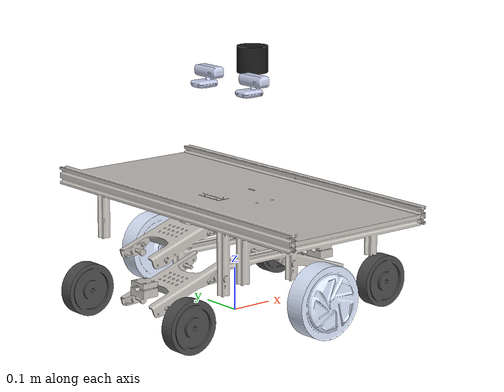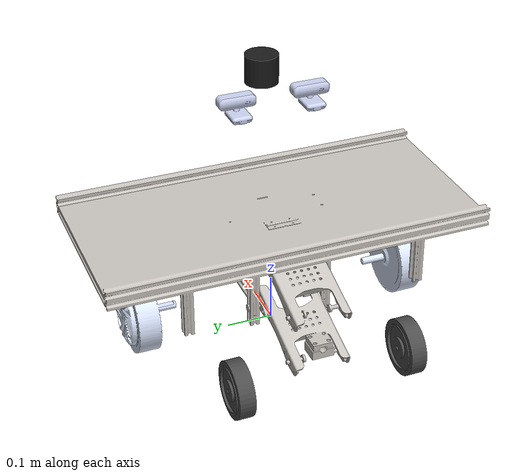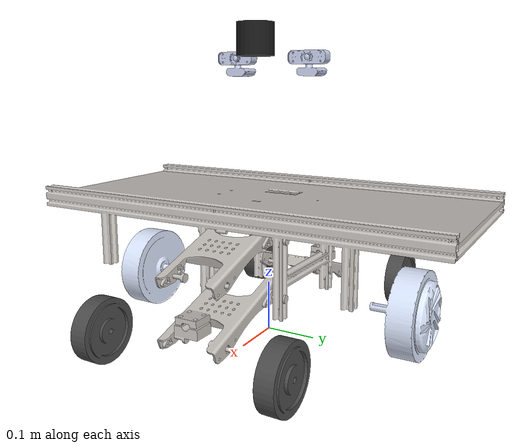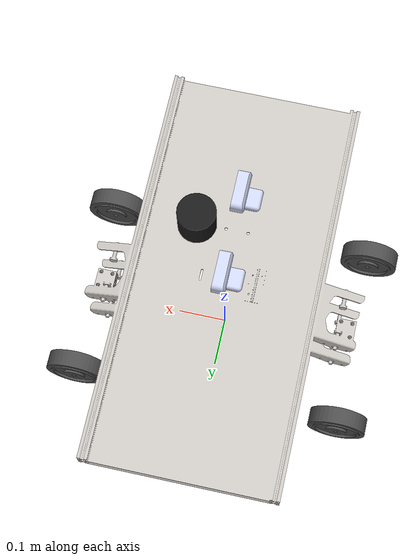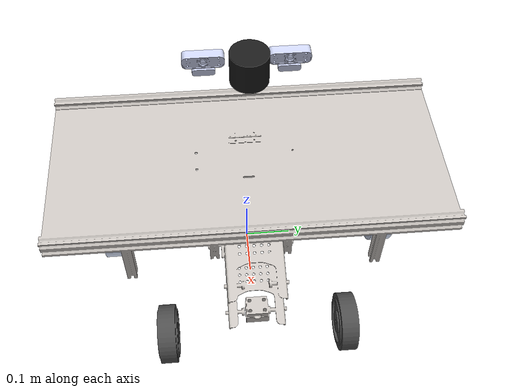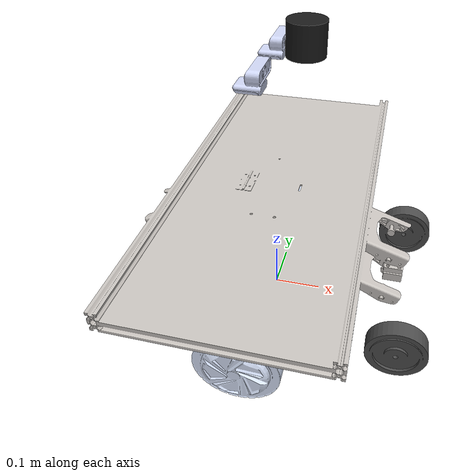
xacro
<?xml version="1.0"?>
<robot name="rover" xmlns:xacro="http://www.ros.org/wiki/xacro">

  <!-- Include the base rover description -->
  <xacro:include filename="$(find rover_description)/urdf/rover.urdf"/>

  <!-- ─────────────────────── LiDAR ─────────────────────── -->
  <!--
    Mounted on top of base_link, slightly forward and centred.
    Adjust xyz / rpy to match the physical mounting position.
  -->
  <link name="laser_link">
    <inertial>
      <origin xyz="0 0 0" rpy="0 0 0"/>
      <mass value="0.15"/>
      <inertia ixx="0.0001" ixy="0" ixz="0"
               iyy="0.0001" iyz="0"
               izz="0.0001"/>
    </inertial>
    <visual>
      <origin xyz="0 0 0" rpy="0 0 0"/>
      <geometry>
        <cylinder radius="0.035" length="0.06"/>
      </geometry>
      <material name="black">
        <color rgba="0.1 0.1 0.1 1"/>
      </material>
    </visual>
    <collision>
      <origin xyz="0 0 0" rpy="0 0 0"/>
      <geometry>
        <cylinder radius="0.035" length="0.06"/>
      </geometry>
    </collision>
  </link>

  <joint name="laser_joint" type="fixed">
    <!-- x=0.05 forward, centred (y=0), z=0.30 above base_link -->
    <origin xyz="0.05 0.0 0.30" rpy="0 0 0"/>
    <parent link="base_link"/>
    <child link="laser_link"/>
    <axis xyz="0 0 1"/>
  </joint>

  <!-- ─────────────────────── IMU ─────────────────────── -->
  <link name="imu_link">
    <inertial>
      <origin xyz="0 0 0" rpy="0 0 0"/>
      <mass value="0.01"/>
      <inertia ixx="1e-6" ixy="0" ixz="0"
               iyy="1e-6" iyz="0"
               izz="1e-6"/>
    </inertial>
  </link>

  <joint name="imu_joint" type="fixed">
    <!-- Near centre of base_link, on top of the chassis -->
    <origin xyz="0.0 0.0 0.05" rpy="0 0 0"/>
    <parent link="base_link"/>
    <child link="imu_link"/>
  </joint>

</robot>

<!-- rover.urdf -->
<robot name="rover" xmlns:xacro="http://www.ros.org/wiki/xacro">
  <xacro:property name="base_to_ground_z" value="0.275" />

  <link name="base_footprint" />

  <joint name="base_footprint_joint" type="fixed">
    <origin xyz="0 0 ${base_to_ground_z}" rpy="0 0 0" />
    <parent link="base_footprint" />
    <child link="base_link" />
    <axis xyz="0 0 0" />
  </joint>

  <link name="base_link">
    <inertial>
      <origin xyz="0.00929881361821189 -0.0040545563248837 -0.0294500651401074" rpy="0 0 0" />
      <mass value="17.0442035474209" />
      <inertia ixx="0.0970526247242131" ixy="1.41327567140864E-07" ixz="0.000195671852036995" iyy="0.444250010440672" iyz="1.64215041759419E-08" izz="0.507144189778274" />
    </inertial>
    <visual>
      <origin xyz="0 0 0" rpy="0 0 0" />
      <geometry>
        <mesh filename="package://rover_description/meshes/base_link.STL" />
      </geometry>
      <material name="">
        <color rgba="0.776470588235294 0.756862745098039 0.737254901960784 1" />
      </material>
    </visual>
    <collision>
      <origin xyz="0 0 0" rpy="0 0 0" />
      <geometry>
        <mesh filename="package://rover_description/meshes/base_link.STL" />
      </geometry>
    </collision>
  </link>
  <link name="RC_link">
    <inertial>
      <origin xyz="2.08680961399921E-10 -0.00282234465505049 6.11222781940479E-06" rpy="0 0 0" />
      <mass value="3.08150027072289" />
      <inertia ixx="0.00574592439542031" ixy="-6.70582574985421E-13" ixz="-2.28984760289166E-14" iyy="0.00983903535739012" iyz="-1.06447979653038E-06" izz="0.00574601871607967" />
    </inertial>
    <visual>
      <origin xyz="0 0 0" rpy="0 0 0" />
      <geometry>
        <mesh filename="package://rover_description/meshes/RC_link.STL" />
      </geometry>
      <material name="">
        <color rgba="0.866666666666667 0.909803921568627 1 1" />
      </material>
    </visual>
    <collision>
      <origin xyz="0 0 0" rpy="0 0 0" />
      <geometry>
        <mesh filename="package://rover_description/meshes/RC_link.STL" />
      </geometry>
    </collision>
  </link>
  <joint name="RC_joint" type="continuous">
    <origin xyz="0 -0.298648302664341 -0.185789817447185" rpy="0 0 0" />
    <parent link="base_link" />
    <child link="RC_link" />
    <axis xyz="0 1 0" />
  </joint>
  <link name="LC_link">
    <inertial>
      <origin xyz="2.49478326885821E-10 0.00282234461580111 -6.11124898947102E-06" rpy="0 0 0" />
      <mass value="3.08150027072289" />
      <inertia ixx="0.0057459243954203" ixy="6.70887106470301E-13" ixz="2.28938189678381E-14" iyy="0.00983903535739012" iyz="-1.06447979653263E-06" izz="0.00574601871607967" />
    </inertial>
    <visual>
      <origin xyz="0 0 0" rpy="0 0 0" />
      <geometry>
        <mesh filename="package://rover_description/meshes/LC_link.STL" />
      </geometry>
      <material name="">
        <color rgba="0.866666666666667 0.909803921568627 1 1" />
      </material>
    </visual>
    <collision>
      <origin xyz="0 0 0" rpy="0 0 0" />
      <geometry>
        <mesh filename="package://rover_description/meshes/LC_link.STL" />
      </geometry>
    </collision>
  </link>
  <joint name="LC_joint" type="continuous">
    <origin xyz="0 0.298058370787828 -0.185789818069492" rpy="0 0 0" />
    <parent link="base_link" />
    <child link="LC_link" />
    <axis xyz="0 1 0" />
  </joint>
  <link name="RB_link">
    <inertial>
      <origin xyz="1.59634971907963E-10 -1.41708311751643E-11 4.63036914366555E-10" rpy="0 0 0" />
      <mass value="0.374612932792008" />
      <inertia ixx="0.000379650011198177" ixy="3.33341327840059E-14" ixz="6.42554876319546E-21" iyy="0.000685202275649919" iyz="-4.92823632249754E-13" izz="0.000379650011198177" />
    </inertial>
    <visual>
      <origin xyz="0 0 0" rpy="0 0 0" />
      <geometry>
        <mesh filename="package://rover_description/meshes/RB_link.STL" />
      </geometry>
      <material name="">
        <color rgba="0.298039215686275 0.298039215686275 0.298039215686275 1" />
      </material>
    </visual>
    <collision>
      <origin xyz="0 0 0" rpy="0 0 0" />
      <geometry>
        <mesh filename="package://rover_description/meshes/RB_link.STL" />
      </geometry>
    </collision>
  </link>
  <joint name="RB_joint" type="continuous">
    <origin xyz="-0.279999989347002 -0.185294965958683 -0.213999983185845" rpy="0 0 0" />
    <parent link="base_link" />
    <child link="RB_link" />
    <axis xyz="0 1 0" />
  </joint>
  <link name="LB_link">
    <inertial>
      <origin xyz="1.19726673020182E-10 -3.35306227228216E-11 1.98084687541566E-10" rpy="0 0 0" />
      <mass value="0.374612932792008" />
      <inertia ixx="0.000379650011198177" ixy="-3.33121032120302E-14" ixz="1.99255387450406E-21" iyy="0.000685202275649919" iyz="-4.92823449020522E-13" izz="0.000379650011198177" />
    </inertial>
    <visual>
      <origin xyz="0 0 0" rpy="0 0 0" />
      <geometry>
        <mesh filename="package://rover_description/meshes/LB_link.STL" />
      </geometry>
      <material name="">
        <color rgba="0.298039215686275 0.298039215686275 0.298039215686275 1" />
      </material>
    </visual>
    <collision>
      <origin xyz="0 0 0" rpy="0 0 0" />
      <geometry>
        <mesh filename="package://rover_description/meshes/LB_link.STL" />
      </geometry>
    </collision>
  </link>
  <joint name="LB_joint" type="continuous">
    <origin xyz="-0.27999998930708 0.184705033999643 -0.213999983517664" rpy="0 0 0" />
    <parent link="base_link" />
    <child link="LB_link" />
    <axis xyz="0 1 0" />
  </joint>
  <link name="RF_link">
    <inertial>
      <origin xyz="2.85578005687626E-10 -5.15184006566471E-11 8.22468287919875E-10" rpy="0 0 0" />
      <mass value="0.374612932792008" />
      <inertia ixx="0.000379650011198177" ixy="1.11380370573803E-17" ixz="-4.14010890324227E-21" iyy="0.000685202275649919" iyz="-4.92823614598025E-13" izz="0.000379650011198177" />
    </inertial>
    <visual>
      <origin xyz="0 0 0" rpy="0 0 0" />
      <geometry>
        <mesh filename="package://rover_description/meshes/RF_link.STL" />
      </geometry>
      <material name="">
        <color rgba="0.298039215686275 0.298039215686275 0.298039215686275 1" />
      </material>
    </visual>
    <collision>
      <origin xyz="0 0 0" rpy="0 0 0" />
      <geometry>
        <mesh filename="package://rover_description/meshes/RF_link.STL" />
      </geometry>
    </collision>
  </link>
  <joint name="RF_joint" type="continuous">
    <origin xyz="0.280000010534147 -0.185294965951893 -0.213999983529674" rpy="0 0 0" />
    <parent link="base_link" />
    <child link="RF_link" />
    <axis xyz="0 1 0" />
  </joint>
  <link name="LF_link">
    <inertial>
      <origin xyz="3.7119E-10 -6.6238E-11 6.0988E-10" rpy="0 0 0" />
      <mass value="0.37461" />
      <inertia ixx="0.00037965" ixy="1.0879E-17" ixz="3.5782E-21" iyy="0.0006852" iyz="-4.9282E-13" izz="0.00037965" />
    </inertial>
    <visual>
      <origin xyz="0 0 0" rpy="0 0 0" />
      <geometry>
        <mesh filename="package://rover_description/meshes/LF_link.STL" />
      </geometry>
      <material name="">
        <color rgba="0.29804 0.29804 0.29804 1" />
      </material>
    </visual>
    <collision>
      <origin xyz="0 0 0" rpy="0 0 0" />
      <geometry>
        <mesh filename="package://rover_description/meshes/LF_link.STL" />
      </geometry>
    </collision>
  </link>
  <joint name="LF_joint" type="continuous">
    <origin xyz="0.280000010448551 0.184705034062867 -0.213999983913857" rpy="0 0 0" />
    <parent link="base_link" />
    <child link="LF_link" />
    <axis xyz="0 1 0" />
  </joint>
  <link name="RCam_link">
    <inertial>
      <origin xyz="0.0071319 0.00013344 0.0068174" rpy="0 0 0" />
      <mass value="0.034007" />
      <inertia ixx="1.1989E-05" ixy="4.6621E-09" ixz="7.717E-10" iyy="4.4175E-06" iyz="-1.0273E-08" izz="1.3719E-05" />
    </inertial>
    <visual>
      <origin xyz="0 0 0" rpy="0 0 0" />
      <geometry>
        <mesh filename="package://rover_description/meshes/RCam_link.STL" />
      </geometry>
      <material name="">
        <color rgba="0.79216 0.81961 0.93333 1" />
      </material>
    </visual>
    <collision>
      <origin xyz="0 0 0" rpy="0 0 0" />
      <geometry>
        <mesh filename="package://rover_description/meshes/RCam_link.STL" />
      </geometry>
    </collision>
  </link>
  <joint name="RCam_joint" type="fixed">
    <origin xyz="-0.025966 -0.078591 0.2496" rpy="0 0 0" />
    <parent link="base_link" />
    <child link="RCam_link" />
    <axis xyz="0 0 0" />
  </joint>
  <link name="LCam_link">
    <inertial>
      <origin xyz="0.0071319 -0.00013344 0.0068174" rpy="0 0 0" />
      <mass value="0" />
      <inertia ixx="1.1989E-05" ixy="4.6621E-09" ixz="7.717E-10" iyy="4.4175E-06" iyz="-1.0273E-08" izz="1.3719E-05" />
    </inertial>
    <visual>
      <origin xyz="0 0 0" rpy="0 0 0" />
      <geometry>
        <mesh filename="package://rover_description/meshes/LCam_link.STL" />
      </geometry>
      <material name="">
        <color rgba="0.79216 0.81961 0.93333 1" />
      </material>
    </visual>
    <collision>
      <origin xyz="0 0 0" rpy="0 0 0" />
      <geometry>
        <mesh filename="package://rover_description/meshes/LCam_link.STL" />
      </geometry>
    </collision>
  </link>
  <joint name="LCam_joint" type="fixed">
    <origin xyz="-0.025966 0.078001 0.2496" rpy="0 0 0" />
    <parent link="base_link" />
    <child link="LCam_link" />
    <axis xyz="0 0 0" />
  </joint>
</robot>
